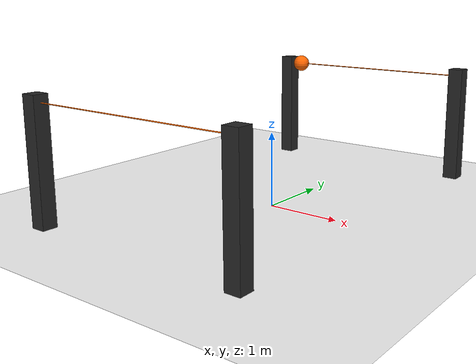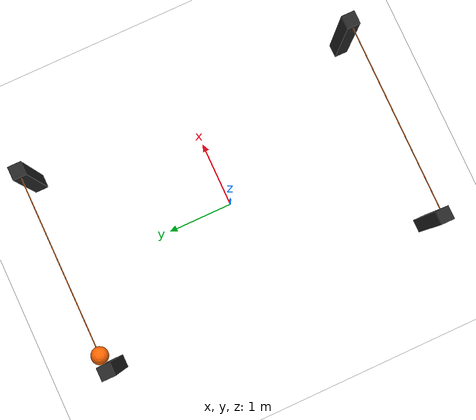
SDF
<sdf version="1.10">
 <world name="EletroQuad2026">
  <physics type="ode">
   <max_step_size>0.001</max_step_size>
   <real_time_factor>1</real_time_factor>
   <real_time_update_rate>1000</real_time_update_rate>
  </physics>
  <gravity>0 0 -9.8000000000000007</gravity>
  <magnetic_field>5.5644999999999998e-06 2.2875799999999999e-05 -4.2388400000000002e-05</magnetic_field>
  <atmosphere type="adiabatic"/>
  <scene>
   <ambient>0.400000006 0.400000006 0.400000006 1</ambient>
   <background>0.699999988 0.699999988 0.699999988 1</background>
   <shadows>true</shadows>
  </scene>
  <model name="styro_ball">
   <include><uri>models/hang_the_right_wire/styro_ball</uri></include>
   <pose degrees="true">-1.25 2.5 1.6 0 0 0</pose>
   <static>true</static>
  </model>
  <model name="arena">
   <include merge="true"><uri>models/miscs/arena_m2</uri></include>
   <static>true</static>
   <pose degrees="true">0 0 0.1 0 0 0</pose>
  </model>
  <include>
   <uri>models/miscs/takeoff_platform</uri>
   <static>true</static>
   <pose degrees="true">0 0 0 0 0 0</pose>
  </include>
  <model name="transmission_line1">
   <include><uri>models/hang_the_right_wire/transmission_line</uri></include>
   <pose degrees="true">0 -2.5 0 0 0 0</pose>
   <static>true</static>
  </model>
  <model name="transmission_line2">
   <include><uri>models/hang_the_right_wire/transmission_line</uri></include>
   <pose degrees="true">0 2.5 0 0 0 0</pose>
   <static>true</static>
  </model>
  <light name="sun" type="directional">
   <pose>0 0 10 0 0 0</pose>
   <intensity>1</intensity>
   <direction>-0.5 0.10000000000000001 -0.90000000000000002</direction>
   <diffuse>0.800000012 0.800000012 0.800000012 1</diffuse>
   <specular>0.200000003 0.200000003 0.200000003 1</specular>
   <attenuation>
    <range>1000</range>
    <linear>0.01</linear>
    <constant>0.90000000000000002</constant>
    <quadratic>0.001</quadratic>
   </attenuation>
   <spot><inner_angle>0</inner_angle><outer_angle>0</outer_angle><falloff>0</falloff></spot>
  </light>
  <spherical_coordinates>
   <surface_model>EARTH_WGS84</surface_model>
   <world_frame_orientation>ENU</world_frame_orientation>
   <latitude_deg>47.397971057728974</latitude_deg>
   <longitude_deg>8.546163739800146</longitude_deg>
   <elevation>0</elevation>
  </spherical_coordinates>
 </world>
</sdf>

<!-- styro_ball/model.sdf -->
<sdf version='1.10'>
<model name='styro_ball'>
  <link name='styro_link'>
    <enable_wind>false</enable_wind>
    <collision name='styro_collision'>
      <geometry><sphere><radius>0.125</radius></sphere></geometry>
      <surface>
        <friction><ode/></friction>
        <bounce/>
        <contact/>
      </surface>
    </collision>
    <visual name='styro_visual'>
      <geometry><sphere><radius>0.125</radius></sphere></geometry>
      <!-- EDITAL -->
      <material><ambient>1 0.3984375 0</ambient><diffuse>1 0.3984375 0</diffuse><specular>1 0.3984375 0</specular></material>
      <!-- EDITAL -->

    </visual>
  </link>
  <self_collide>false</self_collide>
</model>
</sdf>

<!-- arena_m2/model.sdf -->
<sdf version='1.10'>
<model name='arena_m2'>
  <link name='arena-m2_link'>
    <enable_wind>false</enable_wind>
    <collision name='arena-m2_collision'>
      <geometry><plane>
        <normal>0 0 1</normal>
        <size>7 7</size>
      </plane></geometry>
      <surface>
        <friction><ode/></friction>
        <bounce/>
        <contact/>
      </surface>
    </collision>
    <visual name='arena-m2_visual'>
      <geometry><plane>
        <normal>0 0 1</normal>
        <size>7 7</size>
      </plane></geometry>
      <material>
        <ambient>1 1 1 1</ambient>
        <diffuse>1 1 1 1</diffuse>
        <specular>1 1 1 1</specular>
      </material>
    </visual>
  </link>
  <self_collide>false</self_collide>
</model>
</sdf>

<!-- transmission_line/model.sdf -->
<sdf version='1.10'>
<model name='transmission_line'>
  <include merge='true'>
    <uri>models/hang_the_right_wire/transmission_line/hose</uri>
    <pose degrees='true'>0 0 1.6 0 90 0</pose>
  </include>
  <model name='pole1'>
    <include merge='true'><uri>models/hang_the_right_wire/transmission_line/pole</uri></include>
    <pose degrees='true'>-1.48 0 0.85 0 0 0</pose>
  </model>
  <model name='pole2'>
    <include merge='true'><uri>models/hang_the_right_wire/transmission_line/pole</uri></include>
    <pose degrees='true'>1.48 0 0.85 0 0 0</pose>
  </model>
  <enable_wind>false</enable_wind>
  <static>true</static>
</model>
</sdf>

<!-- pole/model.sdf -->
<sdf version='1.10'>
<model name='pole'>
  <link name='pole_link'>
    <enable_wind>false</enable_wind>
    <collision name='pole_collision'>
      <geometry><box><size>0.2 0.2 1.7</size></box></geometry>
      <surface>
        <friction><ode/></friction>
        <bounce/>
        <contact/>
      </surface>
    </collision>
    <visual name='pole_visual'>
      <geometry><box><size>0.2 0.2 1.7</size></box></geometry>
      <material>
        <diffuse>0.15 0.15 0.15 1</diffuse>
        <specular>1 1 1 1</specular>
      </material>
    </visual>
  </link>
  <self_collide>false</self_collide>
</model>
</sdf>

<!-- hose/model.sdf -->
<sdf version='1.10'>
<model name='hose'>
  <link name='hose_link'>
    <enable_wind>false</enable_wind>
    <collision name='hose_collision'>
      <geometry><cylinder>
        <radius>0.00635</radius>
        <length>3</length>
      </cylinder></geometry>
      <surface>
        <friction><ode/></friction>
        <bounce/>
        <contact/>
      </surface>
    </collision>
    <visual name='hose_visual'>
      <geometry><cylinder>
        <radius>0.00635</radius>
        <length>3</length>
      </cylinder></geometry>
      <!-- EDITAL -->
      <material><ambient>1 0.3984375 0</ambient><diffuse>1 0.3984375 0</diffuse><specular>1 0.3984375 0</specular></material>
      <!-- EDITAL -->

    </visual>
  </link>
  <self_collide>false</self_collide>
  <static>true</static>

</model>
</sdf>

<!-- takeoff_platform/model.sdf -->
<sdf version='1.10'>
<model name='takeoff_platform'>
  <link name='takeoff_link'>
    <enable_wind>false</enable_wind>
    <include><uri>models/miscs/default_platform</uri></include>
    <visual name='takeoff_image'>
      <pose>0 0 0.006 0 0 0</pose>
      <geometry><cylinder>
        <radius>0.4</radius>
        <length>0.01</length>
      </cylinder></geometry>
        <material>
        <diffuse>0.7 0.7 0.7 1</diffuse>
        <specular>1 1 1 1</specular>
        <pbr>
          <metal>
            <albedo_map>materials/textures/takeoff.png</albedo_map>
            <metalness>0</metalness>
            <roughness>1</roughness>
          </metal>
        </pbr>
        </material>
    </visual>
  </link>
  <self_collide>false</self_collide>
</model>
</sdf>
